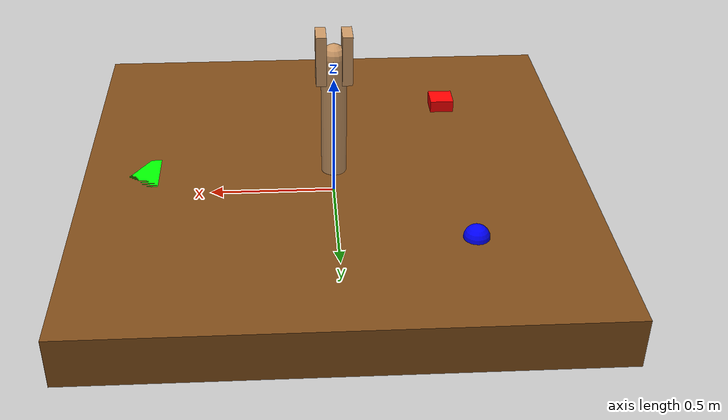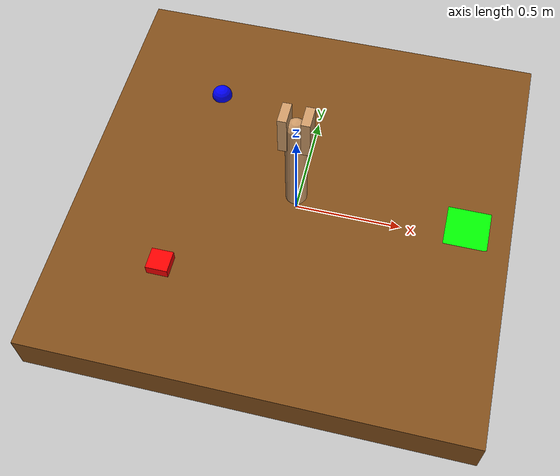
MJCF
<mujoco model="robot_arm_manipulation">
  <compiler angle="degree"/>
  <option timestep="0.01"/>
  <default>
    <geom contype="1" conaffinity="1" friction="0.5 0.1 0.1" rgba="0.8 0.6 0.4 1"/>
  </default>
  <worldbody>
    <geom name="table" type="box" pos="0 0 0" size="1 1 0.1" rgba="0.5 0.3 0.1 1"/>
    <body name="robot" pos="0 0 0.1">
      <!-- Changed base_joint from 'free' to 'slide' along the x-axis -->
      <joint name="base_joint" type="slide" axis="1 0 0" range="-1 1"/>
      <geom name="arm" type="capsule" fromto="0 0 0 0 0 0.5" size="0.05"/>
      <body name="gripper" pos="0 0 0.5">
        <joint name="gripper_joint" type="slide" axis="0 1 0" range="0 0.1"/>
        <geom name="finger1" type="box" pos="0.05 0 0" size="0.02 0.05 0.1"/>
        <geom name="finger2" type="box" pos="-0.05 0 0" size="0.02 0.05 0.1"/>
      </body>
    </body>
    <geom name="target_box" type="box" pos="0.8 0 0.05" size="0.1 0.1 0.05" rgba="0 1 0 1"/>
    <body name="circle_block" pos="-0.5 0.5 0.1">
      <joint name="circle_free" type="free"/>
      <geom name="circle_geom" type="sphere" size="0.05" rgba="0 0 1 1"/>
    </body>
    <body name="x_block" pos="-0.5 -0.5 0.1">
      <joint name="x_free" type="free"/>
      <geom name="x_geom" type="box" size="0.05 0.05 0.05" rgba="1 0 0 1"/>
    </body>
  </worldbody>
  <!-- Actuator definitions for the base and gripper -->
  <actuator>
    <position name="base_act" joint="base_joint" gear="100"/>
    <position name="gripper_act" joint="gripper_joint" gear="100"/>
  </actuator>
</mujoco>
